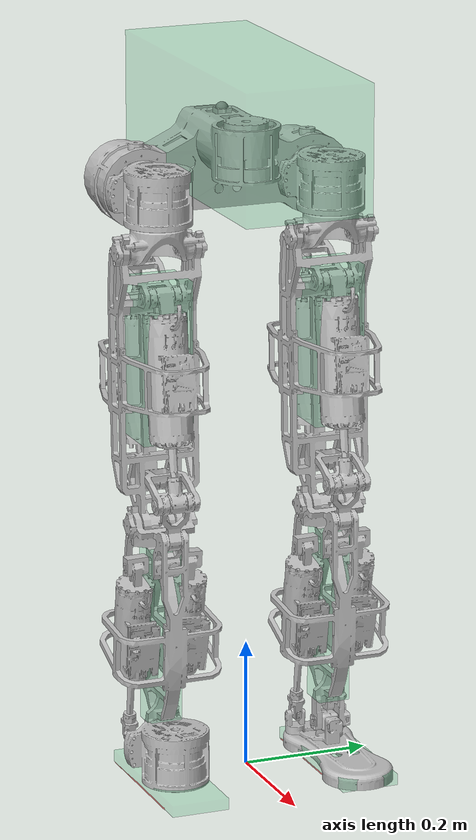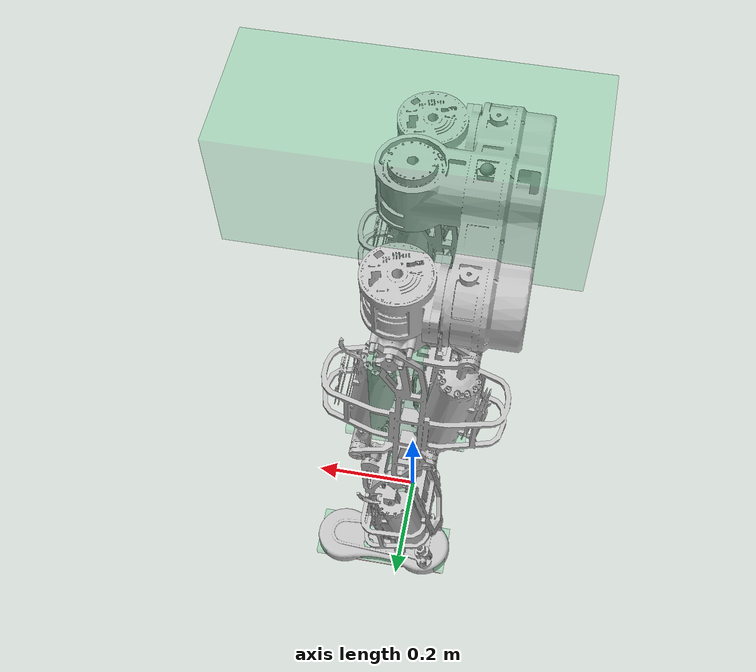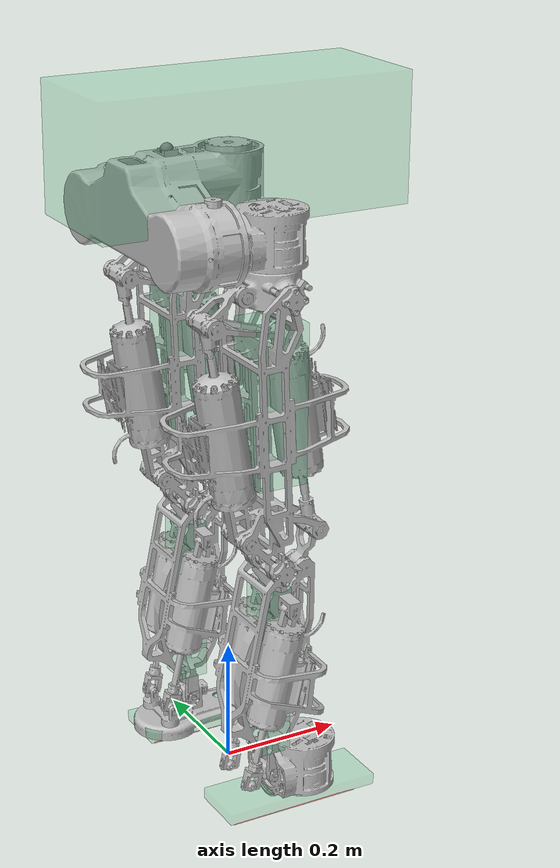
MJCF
<mujoco model="XBot-L">
  <compiler angle="radian" meshdir="../meshes/" eulerseq="zyx"/>
  <option timestep='0.001' iterations='50' solver='PGS' gravity='0 0 -9.81'>
    <!--flag sensornoise="enable" frictionloss="enable"/-->
  </option>
  <size njmax="500" nconmax="100" />

  <visual>
    <quality shadowsize='4096'/>
    <map znear='0.05'/>
  </visual>

  <default>
    <joint limited='true'/>
    <motor ctrllimited='true'/>
    <default class='joint1'>
        <joint  damping="12.736" frictionloss="2.736" armature="0.05"/>
    </default>
    <default class='joint2'>
    	<joint  damping="3.747" frictionloss="3.424" armature="0.01"/>
    </default>
    <default class='joint3'>
        <joint  damping="1.714" frictionloss="3.823" armature="0.01"/>
    </default>
      <default class='joint4'>
        <joint damping="7.74" frictionloss="5.659" armature="0.2"/>
    </default>
    <default class='joint5'>
        <joint  damping="10.068" frictionloss="8.573" armature="2"/>
    </default>
    <default class='joint6'>
        <joint  damping="8.4" frictionloss="3.4" armature="2"/>
    </default>
  </default>

  <asset>
    <mesh name="base_link" file="base_link.STL"/>
    <mesh name="leg_l1_link" file="leg_l1_link.STL"/>
    <mesh name="leg_l2_link" file="leg_l2_link.STL"/>
    <mesh name="leg_l3_link" file="leg_l3_link.STL"/>
    <mesh name="leg_l4_link" file="leg_l4_link.STL"/>
    <mesh name="leg_l5_link" file="leg_l5_link.STL"/>
    <mesh name="leg_l6_link" file="leg_l6_link.STL"/>
    <mesh name="leg_r1_link" file="leg_r1_link.STL"/>
    <mesh name="leg_r2_link" file="leg_r2_link.STL"/>
    <mesh name="leg_r3_link" file="leg_r3_link.STL"/>
    <mesh name="leg_r4_link" file="leg_r4_link.STL"/>
    <mesh name="leg_r5_link" file="leg_r5_link.STL"/>
    <mesh name="leg_r6_link" file="leg_r6_link.STL"/>
  </asset>
  <worldbody>

    <body name="base_link" pos="0 0 1.025" quat="1.0 0 0.0 0">      <!--zero position: posz=1.14   -->
      <inertial mass="8.7757" pos="-0.080697 8.52e-06 -0.087154" quat="0.306415586175932 0.305756549202002 -0.637993039948727 0.63685736405064" diaginertia="0.147112792900926 0.126667515419065 0.0373766916800093" />

      <site name='imu' size='0.01' pos='-0.10 0.0 0.0'/>
      <geom type="mesh" contype="0" conaffinity="0" group="1" density="0" rgba="0.75294 0.75294 0.75294 1" mesh="base_link"/>
      <geom size="0.2 0.1 0.1" type="box" rgba="0 0 0 0"/>

      <joint name="dummy_to_base_link" type="free" pos="0.0 0.0 0.0" axis="0.0 0.0 1.0" range="0.0 0.0" damping="0.0" stiffness="0.0" armature="0.0" frictionloss="0.0" />
      <geom mesh="base_link" type="mesh" contype="0" conaffinity="0" pos="0.0 0.0 0.0" quat="1.0 0.0 0.0 0.0" rgba="0.75294 0.75294 0.75294 1.0" />
      <geom rgba="0 0.7 0.3 0.1" type="box" pos="0.0 0.0 0.0" quat="1.0 0.0 0.0 0.0" size="0.25 0.1 0.1" contype="1" conaffinity="1" friction="1.0 0.005 0.0001" />
      <body name="leg_l1_link" pos="-0.0666 0.14 -0.109">
        <inertial mass="2.2605" pos="0.050925 -8.452e-05 -0.005854" quat="0.0023693877295224 0.770698735937438 0.0044314320717536 0.637179885774826" diaginertia="0.0044387549970758 0.0038454437112697 0.0035247012916544" />
        <joint name="leg_l1_joint" type="hinge" pos="0.0 0.0 0.0" axis="1.0 0.0 0.0" range="-0.087 1.57" class="joint1" />
        <geom mesh="leg_l1_link" type="mesh" contype="0" conaffinity="0" pos="0.0 0.0 0.0" quat="1.0 0.0 0.0 0.0" rgba="0.75294 0.75294 0.75294 1.0" />
        <body name="leg_l2_link" pos="0.0621 0.0 -0.044">
          <inertial mass="0.67611" pos="-0.0039083 -0.0011634 -0.026864" quat="0.464454591155867 0.467737992017537 -0.531866529159276 0.531621198540565" diaginertia="0.0014364110702823 0.0012908109383973 0.0003686779913202" />
          <joint name="leg_l2_joint" type="hinge" pos="0.0 0.0 0.0" axis="0.0 0.0 1.0" range="-1.57 1.57" class="joint2" />
          <geom mesh="leg_l2_link" type="mesh" contype="0" conaffinity="0" pos="0.0 0.0 0.0" quat="1.0 0.0 0.0 0.0" rgba="0.75294 0.75294 0.75294 1.0" />
          <body name="leg_l3_link" pos="0.0 0.0 -0.0325">
            <inertial mass="9.4927" pos="-0.018592 -2.02e-05 -0.20901" quat="0.706404369467941 -0.0316972191833732 -0.03133864775274 0.706403597279681" diaginertia="0.135660025339505 0.111753004025958 0.0369849706345375" />
            <joint name="leg_l3_joint" type="hinge" pos="0.0 0.0 0.0" axis="0.0 1.0 0.0" range="-1.22 0.17" class="joint3" />
            <geom mesh="leg_l3_link" type="mesh" contype="0" conaffinity="0" pos="0.0 0.0 0.0" quat="1.0 0.0 0.0 0.0" rgba="0.75294 0.75294 0.75294 1.0" />
            <geom rgba="0 0.7 0.3 0.1" type="box" pos="0.0 0.0 -0.17" quat="1.0 0.0 0.0 0.0" size="0.04 0.04 0.125" contype="1" conaffinity="1" friction="1.0 0.005 0.0001" />
            <body name="leg_l4_link" pos="0.0 0.0 -0.43">
              <inertial mass="6.5464" pos="-0.0060469 -6.993e-05 -0.15852" quat="0.99726848654997 0.0015473323246807 0.0738447861751561 -0.0003450387729108" diaginertia="0.0588623652116306 0.0530343830148565 0.0139922517735129" />
              <joint name="leg_l4_joint" type="hinge" pos="0.0 0.0 0.0" axis="0.0 1.0 0.0" range="-0.174 1.3" class="joint4" />
              <geom mesh="leg_l4_link" type="mesh" contype="0" conaffinity="0" pos="0.0 0.0 0.0" quat="1.0 0.0 0.0 0.0" rgba="0.75294 0.75294 0.75294 1.0" />
              <geom rgba="0 0.7 0.3 0.1" type="box" pos="0.0 0.0 -0.18" quat="1.0 0.0 0.0 0.0" size="0.025 0.025 0.14" contype="1" conaffinity="1" friction="1.0 0.005 0.0001" />
              <body name="leg_l5_link" pos="0.0 0.0 -0.36">
                <inertial mass="0.091432" pos="0.0 0.0 0.0" quat="0.500000000000001 0.500000000000001 -0.500000000000001 0.500000000000001" diaginertia="1.616e-05 1.185e-05 1.185e-05" />
                <joint name="leg_l5_joint" type="hinge" pos="0.0 0.0 0.0" axis="0.0 1.0 0.0" range="-0.697 0.348" class="joint5" />
                <geom mesh="leg_l5_link" type="mesh" contype="0" conaffinity="0" pos="0.0 0.0 0.0" quat="1.0 0.0 0.0 0.0" rgba="0.75294 0.75294 0.75294 1.0" />
                <body name="leg_l6_link" pos="0.0 0.0 0.0">
                  <inertial mass="0.668868" pos="0.0226538 0 -0.0351955" quat="-1.92727e-05 0.722422 -3.57655e-05 0.691452" diaginertia="0.00443601 0.00396496 0.000648408" />
                  <joint name="leg_l6_joint" type="hinge" pos="0.0 0.0 0.0" axis="1.0 0.0 0.0" range="-0.26 0.26" class="joint6" />
                  <geom mesh="leg_l6_link" type="mesh" contype="0" conaffinity="0" pos="0.0 0.0 0.0" quat="1.0 0.0 0.0 0.0" rgba="0.75294 0.75294 0.75294 1.0" />
                  <geom rgba="0 0.7 0.3 0.1" type="box" pos="0.04 0.0 -0.045" quat="1.0 0.0 0.0 0.0" size="0.13 0.0455 0.009" contype="1" conaffinity="1" friction="1.0 0.005 0.0001" />

                  <!-- 添加力传感器 -->
                  <geom name="l6_patch" type="box" size="0.11 0.0455 0.0013" pos="0.025  0 -0.0537" group="2" rgba="1 0 0 0.5" contype="1" conaffinity="1" density="0.00001" mass="0"/>
                  <site name="l6_force_patch" pos="0.025  0 -0.0537" size="0.001" rgba="1 0 0 1"/>

                </body>
              </body>
            </body>
          </body>
        </body>
      </body>
      <body name="leg_r1_link" pos="-0.0666 -0.14 -0.109">
        <inertial mass="2.26050125" pos="0.05092541 -8.452e-05 -0.00585399" quat="0.0023692695105264 0.77069487627464 0.0044310305147276 0.63718455742005" diaginertia="0.0044387828725242 0.0038454237154481 0.0035246734120275" />
        <joint name="leg_r1_joint" type="hinge" pos="0.0 0.0 0.0" axis="1.0 0.0 0.0" range="-1.57 0.087" class="joint1" />
        <geom mesh="leg_r1_link" type="mesh" contype="0" conaffinity="0" pos="0.0 0.0 0.0" quat="1.0 0.0 0.0 0.0" rgba="0.75294 0.75294 0.75294 1.0" />
        <body name="leg_r2_link" pos="0.0621 0.0 -0.044">
          <inertial mass="0.6761071" pos="-0.00390825 -0.00116338 -0.02686431" quat="0.464445108324014 0.467728496245257 -0.531874909764205 0.531629453207182" diaginertia="0.0014363917572497 0.0012908302514377 0.0003686779913125" />
          <joint name="leg_r2_joint" type="hinge" pos="0.0 0.0 0.0" axis="0.0 0.0 1.0" range="-1.57 1.57" class="joint2" />
          <geom mesh="leg_r2_link" type="mesh" contype="0" conaffinity="0" pos="0.0 0.0 0.0" quat="1.0 0.0 0.0 0.0" rgba="0.75294 0.75294 0.75294 1.0" />
          <body name="leg_r3_link" pos="0.0 0.0 -0.0325">
            <inertial mass="9.49271851" pos="-0.01859241 -2.02e-05 -0.20901058" quat="0.70640433064962 -0.0316980829746236 -0.0313395271905482 0.706403558322486" diaginertia="0.1356638353384 0.111750460523418 0.0369844741381813" />
            <joint name="leg_r3_joint" type="hinge" pos="0.0 0.0 0.0" axis="0.0 1.0 0.0" range="-1.22 0.17" class="joint3" />
            <geom mesh="leg_r3_link" type="mesh" contype="0" conaffinity="0" pos="0.0 0.0 0.0" quat="1.0 0.0 0.0 0.0" rgba="0.75294 0.75294 0.75294 1.0" />
            <geom rgba="0 0.7 0.3 0.1" type="box" pos="0.0 0.0 -0.17" quat="1.0 0.0 0.0 0.0" size="0.04 0.04 0.125" contype="1" conaffinity="1" friction="1.0 0.005 0.0001" />
            <body name="leg_r4_link" pos="0.0 0.0 -0.43">
              <inertial mass="6.54635421" pos="-0.00604687 -6.993e-05 -0.1585234" quat="0.997268537222902 0.0015473347010516 0.0738441018864359 -0.0003450176821328" diaginertia="0.0588621600862714 0.0530340330152136 0.013991916898515" />
              <joint name="leg_r4_joint" type="hinge" pos="0.0 0.0 0.0" axis="0.0 1.0 0.0" range="-0.174 1.3" class="joint4" />
              <geom mesh="leg_r4_link" type="mesh" contype="0" conaffinity="0" pos="0.0 0.0 0.0" quat="1.0 0.0 0.0 0.0" rgba="0.75294 0.75294 0.75294 1.0" />
              <geom rgba="0 0.7 0.3 0.1" type="box" pos="0.0 0.0 -0.18" quat="1.0 0.0 0.0 0.0" size="0.025 0.025 0.14" contype="1" conaffinity="1" friction="1.0 0.005 0.0001" />
              <body name="leg_r5_link" pos="0.0 0.0 -0.36">
                <inertial mass="0.09143186" pos="0.0 0.0 0.0" quat="0.500000000000001 0.500000000000001 -0.500000000000001 0.500000000000001" diaginertia="1.616e-05 1.185e-05 1.185e-05" />
                <joint name="leg_r5_joint" type="hinge" pos="0.0 0.0 0.0" axis="0.0 1.0 0.0" range="-0.697 0.348" class="joint5" />
                <geom mesh="leg_r5_link" type="mesh" contype="0" conaffinity="0" pos="0.0 0.0 0.0" quat="1.0 0.0 0.0 0.0" rgba="0.7529412 0.7529412 0.7529412 1.0" />
                <body name="leg_r6_link" pos="0.0 0.0 0.0">
                  <inertial mass="0.668868" pos="0.0226538 0 -0.0351955" quat="-1.92727e-05 0.722422 -3.57655e-05 0.691452" diaginertia="0.00443601 0.00396496 0.000648408" />
                  <joint name="leg_r6_joint" type="hinge" pos="0.0 0.0 0.0" axis="1.0 0.0 0.0" range="-0.26 0.26" class="joint6" />
                  <geom mesh="leg_r6_link" type="mesh" contype="0" conaffinity="0" pos="0.0 0.0 0.0" quat="1.0 0.0 0.0 0.0" rgba="0.75294 0.75294 0.75294 1.0" />
                  <geom rgba="0 0.7 0.3 0.1" type="box" pos="0.04 0.0 -0.045" quat="1.0 0.0 0.0 0.0" size="0.13 0.0455 0.009" contype="1" conaffinity="1" friction="1.0 0.005 0.0001" />

                  <!-- 添加力传感器 -->
                  <geom name="r6_patch" type="box" size="0.11 0.0455 0.0013" pos="0.025  0 -0.0537" group="2" rgba="1 0 0 0.5" contype="1" conaffinity="1" density="0.00001" mass="0"/>
                  <site name="r6_force_patch" pos="0.025  0 -0.0537" size="0.001" rgba="1 0 0 1"/>
                </body>
              </body>
            </body>
          </body>
        </body>
      </body>
    </body>
  </worldbody>

  <actuator>
    <motor name="leg_l1_joint_motor" joint="leg_l1_joint" ctrlrange="-119.0 119.0" />
    <motor name="leg_l2_joint_motor" joint="leg_l2_joint" ctrlrange="-120.0 120.0" />
    <motor name="leg_l3_joint_motor" joint="leg_l3_joint" ctrlrange="-200.0 100.0" />
    <motor name="leg_l4_joint_motor" joint="leg_l4_joint" ctrlrange="-240.0 140.0" />
    <motor name="leg_l5_joint_motor" joint="leg_l5_joint" ctrlrange="-130.0 130.0" />
    <motor name="leg_l6_joint_motor" joint="leg_l6_joint" ctrlrange="-130.0 130.0" />
    <motor name="leg_r1_joint_motor" joint="leg_r1_joint" ctrlrange="-119.0 119.0" />
    <motor name="leg_r2_joint_motor" joint="leg_r2_joint" ctrlrange="-120.0 120.0" />
    <motor name="leg_r3_joint_motor" joint="leg_r3_joint" ctrlrange="-200.0 100.0" />
    <motor name="leg_r4_joint_motor" joint="leg_r4_joint" ctrlrange="-240.0 140.0" />
    <motor name="leg_r5_joint_motor" joint="leg_r5_joint" ctrlrange="-130.0 130.0" />
    <motor name="leg_r6_joint_motor" joint="leg_r6_joint" ctrlrange="-130.0 130.0" />
  </actuator>
  <visual>
    <headlight diffuse="0.6 0.6 0.6" ambient="0.3 0.3 0.3" specular="0 0 0" />
    <rgba haze="0.15 0.25 0.35 1" />
    <global azimuth="160" elevation="-20" />
  </visual>

  <sensor>
    <framequat name='body-orientation' objtype='site' noise='0.001' objname='imu'/>
    <framepos name='body-linear-pos' objtype='site' noise='0.001' objname='imu'/>
    <gyro name='body-angular-velocity' site='imu' noise='0.005' cutoff='34.9'/>
    <velocimeter name='body-linear-vel' site='imu' noise='0.001' cutoff='30'/>
    <accelerometer name='body-linear-acceleration' site='imu' noise='0.005' cutoff='157'/>
    <magnetometer name='magnetometer' site='imu'/>

    <force name="l_feet_force" site="l6_force_patch"/>
    <force name="r_feet_force" site="r6_force_patch"/>

  </sensor>
</mujoco>
